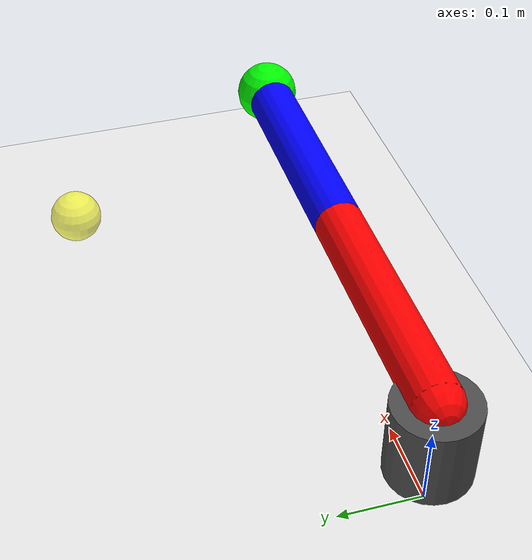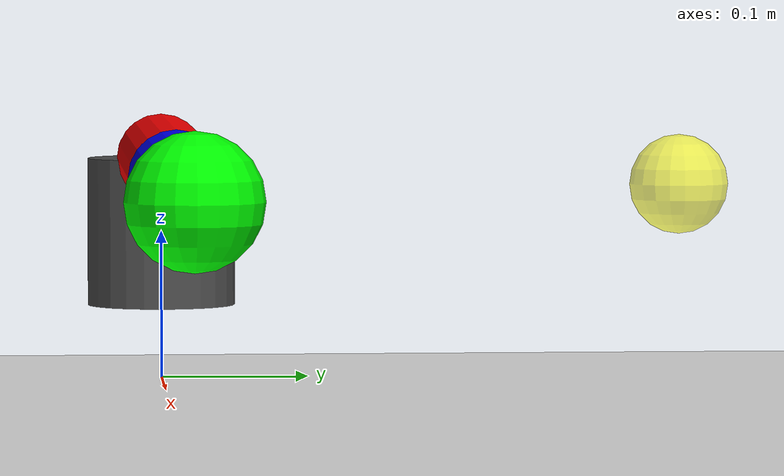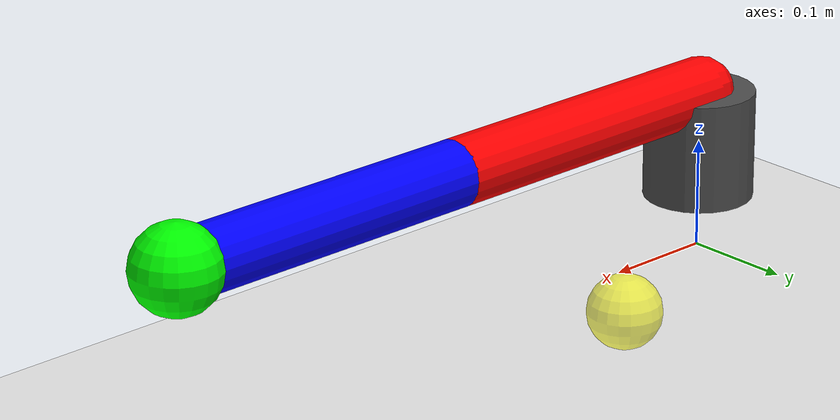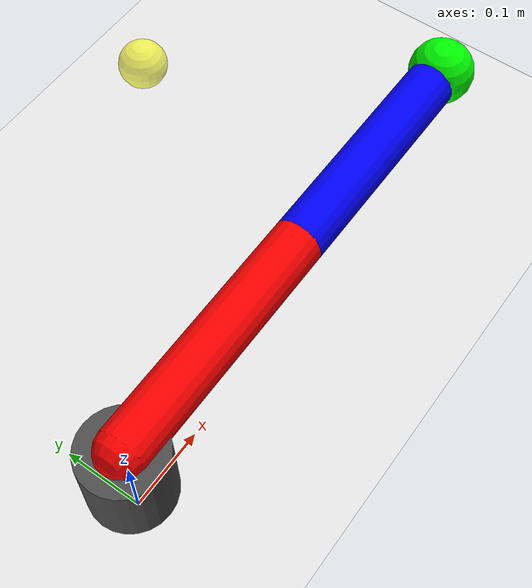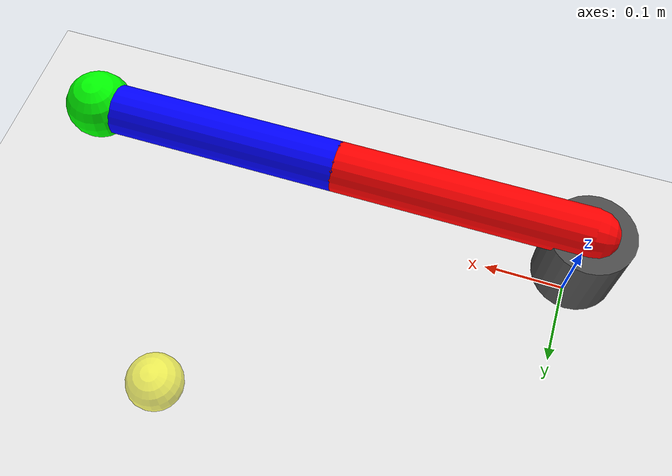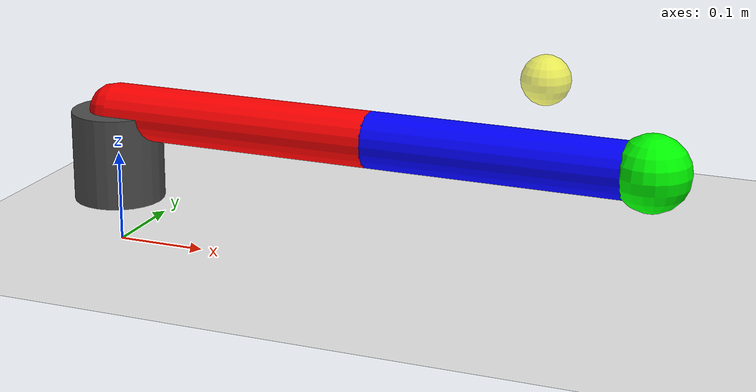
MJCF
<mujoco model="two_link_arm">
  <option gravity="0 0 -9.81"/>
  <worldbody>
    <light diffuse=".6 .6 .6" pos="0 0 3" dir="0 0 -1"/>
    <geom type="plane" size="2 2 0.1" rgba=".9 .9 .9 1"/>

    <!-- Base, fixed to the world -->
    <body name="base" pos="0 0 0.1">
      <geom type="cylinder" size="0.05 0.05" rgba=".3 .3 .3 1"/>

      <!-- Link 1 -->
      <body name="link1" pos="0 0 0.05">
        <joint name="joint1" type="hinge" axis="0 0 1" pos="0 0 0"/>
        <geom type="capsule" fromto="0 0 0  0.3 0 0" size="0.03" rgba="1 0 0 1"/>

        <!-- Link 2 -->
        <body name="link2" pos="0.3 0 0">
          <joint name="joint2" type="hinge" axis="0 0 1" pos="0 0 0"/>
          <geom type="capsule" fromto="0 0 0  0.3 0 0" size="0.03" rgba="0 0 1 1"/>

          <!-- End-effector marker -->
          <body name="end_effector" pos="0.3 0 0">
            <geom type="sphere" size="0.04" rgba="0 1 0 1"/>
          </body>
        </body>
      </body>
    </body>

    <!-- Target: fixed in world space, NOT attached to the arm -->
    <body name="target" pos="0.4 0.3 0.15">
      <geom type="sphere" size="0.03" rgba="1 1 0 0.6" contype="0" conaffinity="0"/>
    </body>

  </worldbody>

  <actuator>
    <motor joint="joint1" gear="50" ctrlrange="-1 1"/>
    <motor joint="joint2" gear="50" ctrlrange="-1 1"/>
  </actuator>
</mujoco>
